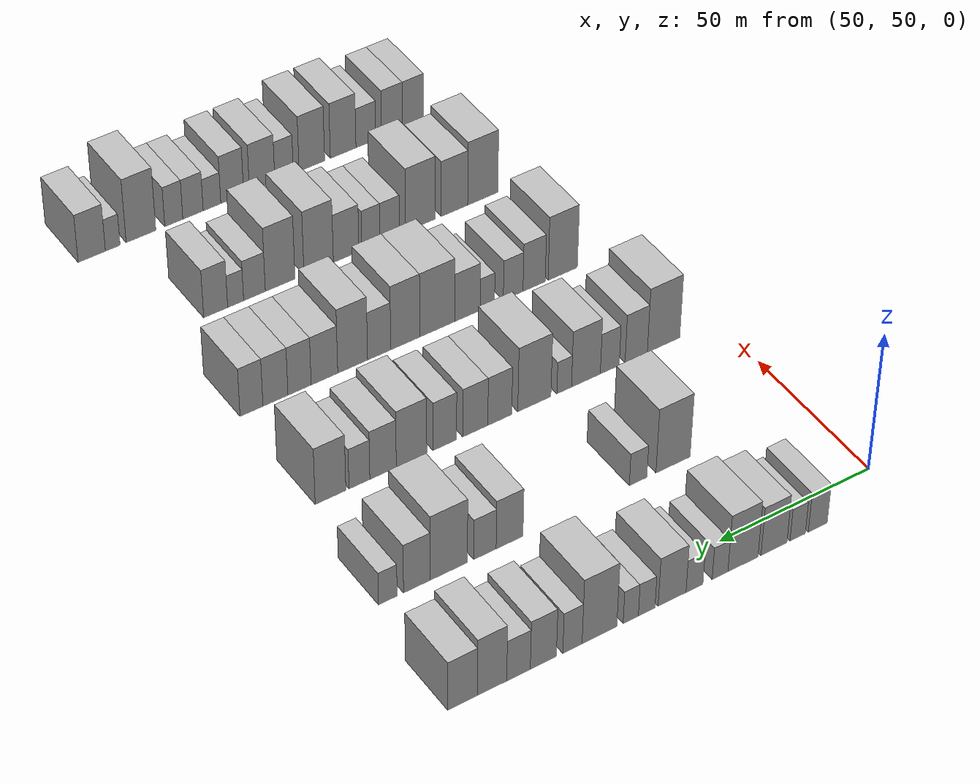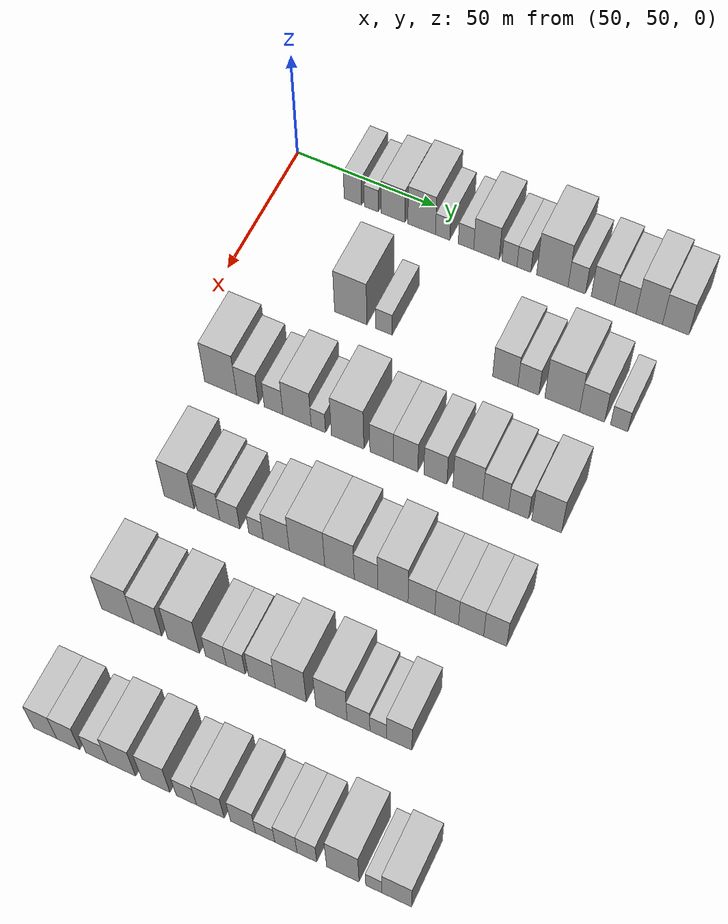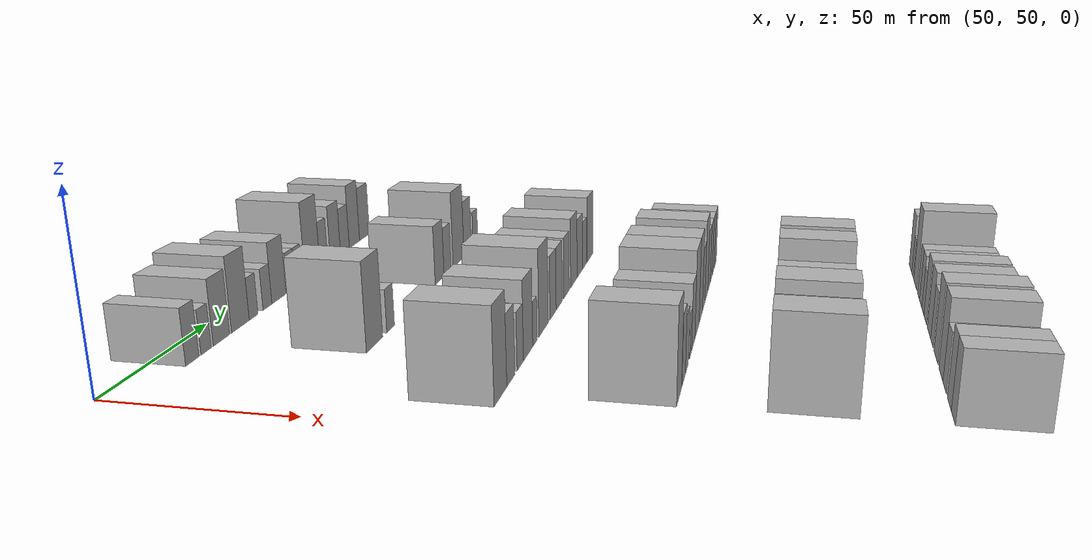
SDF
<sdf version="1.6">
 <world name="default">
  <model name="building_76">
   <static>1</static>
   <pose>50.0000 75.0521 0 0.000000 0.000000 0.000000</pose>
   <link name="link">
    <pose>0 0 7.50 0 0 0</pose>
    <collision name="collision"><geometry><box><size>20.0000 6.3137 15.0000</size></box></geometry></collision>
    <visual name="visual">
     <cast_shadows>0</cast_shadows>
     <geometry><box><size>20.0000 6.3137 15.0000</size></box></geometry>
     <material>
      <script>
       <uri>model://HANNAS_wall/materials/scripts</uri>
       <uri>model://HANNAS_wall/materials/textures</uri>
       <name>vrc/HANNAS_wall</name>
      </script>
     </material>
    </visual>
   </link>
  </model>
  <model name="building_77">
   <static>1</static>
   <pose>50.0000 81.7573 0 0.000000 0.000000 0.000000</pose>
   <link name="link">
    <pose>0 0 6.00 0 0 0</pose>
    <collision name="collision"><geometry><box><size>20.0000 5.0967 12.0000</size></box></geometry></collision>
    <visual name="visual">
     <cast_shadows>0</cast_shadows>
     <geometry><box><size>20.0000 5.0967 12.0000</size></box></geometry>
     <material>
      <script>
       <uri>model://HANNAS_wall/materials/scripts</uri>
       <uri>model://HANNAS_wall/materials/textures</uri>
       <name>vrc/HANNAS_wall</name>
      </script>
     </material>
    </visual>
   </link>
  </model>
  <model name="building_78">
   <static>1</static>
   <pose>50.0000 89.5928 0 0.000000 0.000000 0.000000</pose>
   <link name="link">
    <pose>0 0 9.00 0 0 0</pose>
    <collision name="collision"><geometry><box><size>20.0000 8.5744 18.0000</size></box></geometry></collision>
    <visual name="visual">
     <cast_shadows>0</cast_shadows>
     <geometry><box><size>20.0000 8.5744 18.0000</size></box></geometry>
     <material>
      <script>
       <uri>model://HANNAS_wall/materials/scripts</uri>
       <uri>model://HANNAS_wall/materials/textures</uri>
       <name>vrc/HANNAS_wall</name>
      </script>
     </material>
    </visual>
   </link>
  </model>
  <model name="building_79">
   <static>1</static>
   <pose>50.0000 99.8030 0 0.000000 0.000000 0.000000</pose>
   <link name="link">
    <pose>0 0 10.50 0 0 0</pose>
    <collision name="collision"><geometry><box><size>20.0000 9.8460 21.0000</size></box></geometry></collision>
    <visual name="visual">
     <cast_shadows>0</cast_shadows>
     <geometry><box><size>20.0000 9.8460 21.0000</size></box></geometry>
     <material>
      <script>
       <uri>model://HANNAS_wall/materials/scripts</uri>
       <uri>model://HANNAS_wall/materials/textures</uri>
       <name>vrc/HANNAS_wall</name>
      </script>
     </material>
    </visual>
   </link>
  </model>
  <model name="building_80">
   <static>1</static>
   <pose>50.0000 107.2828 0 0.000000 0.000000 0.000000</pose>
   <link name="link">
    <pose>0 0 6.00 0 0 0</pose>
    <collision name="collision"><geometry><box><size>20.0000 5.1136 12.0000</size></box></geometry></collision>
    <visual name="visual">
     <cast_shadows>0</cast_shadows>
     <geometry><box><size>20.0000 5.1136 12.0000</size></box></geometry>
     <material>
      <script>
       <uri>model://HANNAS_wall/materials/scripts</uri>
       <uri>model://HANNAS_wall/materials/textures</uri>
       <name>vrc/HANNAS_wall</name>
      </script>
     </material>
    </visual>
   </link>
  </model>
  <model name="building_81">
   <static>1</static>
   <pose>50.0000 115.5701 0 0.000000 0.000000 0.000000</pose>
   <link name="link">
    <pose>0 0 6.00 0 0 0</pose>
    <collision name="collision"><geometry><box><size>20.0000 5.4610 12.0000</size></box></geometry></collision>
    <visual name="visual">
     <cast_shadows>0</cast_shadows>
     <geometry><box><size>20.0000 5.4610 12.0000</size></box></geometry>
     <material>
      <script>
       <uri>model://HANNAS_wall/materials/scripts</uri>
       <uri>model://HANNAS_wall/materials/textures</uri>
       <name>vrc/HANNAS_wall</name>
      </script>
     </material>
    </visual>
   </link>
  </model>
  <model name="building_82">
   <static>1</static>
   <pose>50.0000 122.7783 0 0.000000 0.000000 0.000000</pose>
   <link name="link">
    <pose>0 0 9.00 0 0 0</pose>
    <collision name="collision"><geometry><box><size>20.0000 8.9554 18.0000</size></box></geometry></collision>
    <visual name="visual">
     <cast_shadows>0</cast_shadows>
     <geometry><box><size>20.0000 8.9554 18.0000</size></box></geometry>
     <material>
      <script>
       <uri>model://HANNAS_wall/materials/scripts</uri>
       <uri>model://HANNAS_wall/materials/textures</uri>
       <name>vrc/HANNAS_wall</name>
      </script>
     </material>
    </visual>
   </link>
  </model>
  <model name="building_83">
   <static>1</static>
   <pose>50.0000 130.8940 0 0.000000 0.000000 0.000000</pose>
   <link name="link">
    <pose>0 0 6.00 0 0 0</pose>
    <collision name="collision"><geometry><box><size>20.0000 5.2760 12.0000</size></box></geometry></collision>
    <visual name="visual">
     <cast_shadows>0</cast_shadows>
     <geometry><box><size>20.0000 5.2760 12.0000</size></box></geometry>
     <material>
      <script>
       <uri>model://HANNAS_wall/materials/scripts</uri>
       <uri>model://HANNAS_wall/materials/textures</uri>
       <name>vrc/HANNAS_wall</name>
      </script>
     </material>
    </visual>
   </link>
  </model>
  <model name="building_84">
   <static>1</static>
   <pose>50.0000 135.9546 0 0.000000 0.000000 0.000000</pose>
   <link name="link">
    <pose>0 0 6.00 0 0 0</pose>
    <collision name="collision"><geometry><box><size>20.0000 4.8452 12.0000</size></box></geometry></collision>
    <visual name="visual">
     <cast_shadows>0</cast_shadows>
     <geometry><box><size>20.0000 4.8452 12.0000</size></box></geometry>
     <material>
      <script>
       <uri>model://HANNAS_wall/materials/scripts</uri>
       <uri>model://HANNAS_wall/materials/textures</uri>
       <name>vrc/HANNAS_wall</name>
      </script>
     </material>
    </visual>
   </link>
  </model>
  <model name="building_85">
   <static>1</static>
   <pose>50.0000 145.8380 0 0.000000 0.000000 0.000000</pose>
   <link name="link">
    <pose>0 0 12.00 0 0 0</pose>
    <collision name="collision"><geometry><box><size>20.0000 10.9216 24.0000</size></box></geometry></collision>
    <visual name="visual">
     <cast_shadows>0</cast_shadows>
     <geometry><box><size>20.0000 10.9216 24.0000</size></box></geometry>
     <material>
      <script>
       <uri>model://HANNAS_wall/materials/scripts</uri>
       <uri>model://HANNAS_wall/materials/textures</uri>
       <name>vrc/HANNAS_wall</name>
      </script>
     </material>
    </visual>
   </link>
  </model>
  <model name="building_86">
   <static>1</static>
   <pose>50.0000 154.3077 0 0.000000 0.000000 0.000000</pose>
   <link name="link">
    <pose>0 0 7.50 0 0 0</pose>
    <collision name="collision"><geometry><box><size>20.0000 6.0177 15.0000</size></box></geometry></collision>
    <visual name="visual">
     <cast_shadows>0</cast_shadows>
     <geometry><box><size>20.0000 6.0177 15.0000</size></box></geometry>
     <material>
      <script>
       <uri>model://HANNAS_wall/materials/scripts</uri>
       <uri>model://HANNAS_wall/materials/textures</uri>
       <name>vrc/HANNAS_wall</name>
      </script>
     </material>
    </visual>
   </link>
  </model>
  <model name="building_87">
   <static>1</static>
   <pose>50.0000 163.3522 0 0.000000 0.000000 0.000000</pose>
   <link name="link">
    <pose>0 0 9.00 0 0 0</pose>
    <collision name="collision"><geometry><box><size>20.0000 8.0713 18.0000</size></box></geometry></collision>
    <visual name="visual">
     <cast_shadows>0</cast_shadows>
     <geometry><box><size>20.0000 8.0713 18.0000</size></box></geometry>
     <material>
      <script>
       <uri>model://HANNAS_wall/materials/scripts</uri>
       <uri>model://HANNAS_wall/materials/textures</uri>
       <name>vrc/HANNAS_wall</name>
      </script>
     </material>
    </visual>
   </link>
  </model>
  <model name="building_88">
   <static>1</static>
   <pose>50.0000 171.0215 0 0.000000 0.000000 0.000000</pose>
   <link name="link">
    <pose>0 0 7.50 0 0 0</pose>
    <collision name="collision"><geometry><box><size>20.0000 7.2672 15.0000</size></box></geometry></collision>
    <visual name="visual">
     <cast_shadows>0</cast_shadows>
     <geometry><box><size>20.0000 7.2672 15.0000</size></box></geometry>
     <material>
      <script>
       <uri>model://HANNAS_wall/materials/scripts</uri>
       <uri>model://HANNAS_wall/materials/textures</uri>
       <name>vrc/HANNAS_wall</name>
      </script>
     </material>
    </visual>
   </link>
  </model>
  <model name="building_89">
   <static>1</static>
   <pose>50.0000 179.1324 0 0.000000 0.000000 0.000000</pose>
   <link name="link">
    <pose>0 0 10.50 0 0 0</pose>
    <collision name="collision"><geometry><box><size>20.0000 8.9546 21.0000</size></box></geometry></collision>
    <visual name="visual">
     <cast_shadows>0</cast_shadows>
     <geometry><box><size>20.0000 8.9546 21.0000</size></box></geometry>
     <material>
      <script>
       <uri>model://HANNAS_wall/materials/scripts</uri>
       <uri>model://HANNAS_wall/materials/textures</uri>
       <name>vrc/HANNAS_wall</name>
      </script>
     </material>
    </visual>
   </link>
  </model>
  <model name="building_90">
   <static>1</static>
   <pose>50.0000 188.1032 0 0.000000 0.000000 0.000000</pose>
   <link name="link">
    <pose>0 0 9.00 0 0 0</pose>
    <collision name="collision"><geometry><box><size>20.0000 8.9871 18.0000</size></box></geometry></collision>
    <visual name="visual">
     <cast_shadows>0</cast_shadows>
     <geometry><box><size>20.0000 8.9871 18.0000</size></box></geometry>
     <material>
      <script>
       <uri>model://HANNAS_wall/materials/scripts</uri>
       <uri>model://HANNAS_wall/materials/textures</uri>
       <name>vrc/HANNAS_wall</name>
      </script>
     </material>
    </visual>
   </link>
  </model>
  <model name="building_205">
   <static>1</static>
   <pose>90.0000 93.7532 0 0.000000 0.000000 0.000000</pose>
   <link name="link">
    <pose>0 0 12.00 0 0 0</pose>
    <collision name="collision"><geometry><box><size>20.0000 11.3668 24.0000</size></box></geometry></collision>
    <visual name="visual">
     <cast_shadows>0</cast_shadows>
     <geometry><box><size>20.0000 11.3668 24.0000</size></box></geometry>
     <material>
      <script>
       <uri>model://HANNAS_wall/materials/scripts</uri>
       <uri>model://HANNAS_wall/materials/textures</uri>
       <name>vrc/HANNAS_wall</name>
      </script>
     </material>
    </visual>
   </link>
  </model>
  <model name="building_206">
   <static>1</static>
   <pose>90.0000 105.3452 0 0.000000 0.000000 0.000000</pose>
   <link name="link">
    <pose>0 0 6.00 0 0 0</pose>
    <collision name="collision"><geometry><box><size>20.0000 5.8174 12.0000</size></box></geometry></collision>
    <visual name="visual">
     <cast_shadows>0</cast_shadows>
     <geometry><box><size>20.0000 5.8174 12.0000</size></box></geometry>
     <material>
      <script>
       <uri>model://HANNAS_wall/materials/scripts</uri>
       <uri>model://HANNAS_wall/materials/textures</uri>
       <name>vrc/HANNAS_wall</name>
      </script>
     </material>
    </visual>
   </link>
  </model>
  <model name="building_207">
   <static>1</static>
   <pose>90.0000 147.0761 0 0.000000 0.000000 0.000000</pose>
   <link name="link">
    <pose>0 0 9.00 0 0 0</pose>
    <collision name="collision"><geometry><box><size>20.0000 8.5481 18.0000</size></box></geometry></collision>
    <visual name="visual">
     <cast_shadows>0</cast_shadows>
     <geometry><box><size>20.0000 8.5481 18.0000</size></box></geometry>
     <material>
      <script>
       <uri>model://HANNAS_wall/materials/scripts</uri>
       <uri>model://HANNAS_wall/materials/textures</uri>
       <name>vrc/HANNAS_wall</name>
      </script>
     </material>
    </visual>
   </link>
  </model>
  <model name="building_208">
   <static>1</static>
   <pose>90.0000 154.8977 0 0.000000 0.000000 0.000000</pose>
   <link name="link">
    <pose>0 0 7.50 0 0 0</pose>
    <collision name="collision"><geometry><box><size>20.0000 7.0952 15.0000</size></box></geometry></collision>
    <visual name="visual">
     <cast_shadows>0</cast_shadows>
     <geometry><box><size>20.0000 7.0952 15.0000</size></box></geometry>
     <material>
      <script>
       <uri>model://HANNAS_wall/materials/scripts</uri>
       <uri>model://HANNAS_wall/materials/textures</uri>
       <name>vrc/HANNAS_wall</name>
      </script>
     </material>
    </visual>
   </link>
  </model>
  <model name="building_209">
   <static>1</static>
   <pose>90.0000 166.2801 0 0.000000 0.000000 0.000000</pose>
   <link name="link">
    <pose>0 0 12.00 0 0 0</pose>
    <collision name="collision"><geometry><box><size>20.0000 11.6695 24.0000</size></box></geometry></collision>
    <visual name="visual">
     <cast_shadows>0</cast_shadows>
     <geometry><box><size>20.0000 11.6695 24.0000</size></box></geometry>
     <material>
      <script>
       <uri>model://HANNAS_wall/materials/scripts</uri>
       <uri>model://HANNAS_wall/materials/textures</uri>
       <name>vrc/HANNAS_wall</name>
      </script>
     </material>
    </visual>
   </link>
  </model>
  <model name="building_210">
   <static>1</static>
   <pose>90.0000 176.2629 0 0.000000 0.000000 0.000000</pose>
   <link name="link">
    <pose>0 0 9.00 0 0 0</pose>
    <collision name="collision"><geometry><box><size>20.0000 8.2962 18.0000</size></box></geometry></collision>
    <visual name="visual">
     <cast_shadows>0</cast_shadows>
     <geometry><box><size>20.0000 8.2962 18.0000</size></box></geometry>
     <material>
      <script>
       <uri>model://HANNAS_wall/materials/scripts</uri>
       <uri>model://HANNAS_wall/materials/textures</uri>
       <name>vrc/HANNAS_wall</name>
      </script>
     </material>
    </visual>
   </link>
  </model>
  <model name="building_211">
   <static>1</static>
   <pose>90.0000 185.2749 0 0.000000 0.000000 0.000000</pose>
   <link name="link">
    <pose>0 0 6.00 0 0 0</pose>
    <collision name="collision"><geometry><box><size>20.0000 5.7279 12.0000</size></box></geometry></collision>
    <visual name="visual">
     <cast_shadows>0</cast_shadows>
     <geometry><box><size>20.0000 5.7279 12.0000</size></box></geometry>
     <material>
      <script>
       <uri>model://HANNAS_wall/materials/scripts</uri>
       <uri>model://HANNAS_wall/materials/textures</uri>
       <name>vrc/HANNAS_wall</name>
      </script>
     </material>
    </visual>
   </link>
  </model>
  <model name="building_343">
   <static>1</static>
   <pose>130.0000 68.3264 0 0.000000 0.000000 0.000000</pose>
   <link name="link">
    <pose>0 0 12.00 0 0 0</pose>
    <collision name="collision"><geometry><box><size>20.0000 11.1524 24.0000</size></box></geometry></collision>
    <visual name="visual">
     <cast_shadows>0</cast_shadows>
     <geometry><box><size>20.0000 11.1524 24.0000</size></box></geometry>
     <material>
      <script>
       <uri>model://HANNAS_wall/materials/scripts</uri>
       <uri>model://HANNAS_wall/materials/textures</uri>
       <name>vrc/HANNAS_wall</name>
      </script>
     </material>
    </visual>
   </link>
  </model>
  <model name="building_344">
   <static>1</static>
   <pose>130.0000 77.7232 0 0.000000 0.000000 0.000000</pose>
   <link name="link">
    <pose>0 0 9.00 0 0 0</pose>
    <collision name="collision"><geometry><box><size>20.0000 7.6411 18.0000</size></box></geometry></collision>
    <visual name="visual">
     <cast_shadows>0</cast_shadows>
     <geometry><box><size>20.0000 7.6411 18.0000</size></box></geometry>
     <material>
      <script>
       <uri>model://HANNAS_wall/materials/scripts</uri>
       <uri>model://HANNAS_wall/materials/textures</uri>
       <name>vrc/HANNAS_wall</name>
      </script>
     </material>
    </visual>
   </link>
  </model>
  <model name="building_345">
   <static>1</static>
   <pose>130.0000 86.7594 0 0.000000 0.000000 0.000000</pose>
   <link name="link">
    <pose>0 0 7.50 0 0 0</pose>
    <collision name="collision"><geometry><box><size>20.0000 6.4314 15.0000</size></box></geometry></collision>
    <visual name="visual">
     <cast_shadows>0</cast_shadows>
     <geometry><box><size>20.0000 6.4314 15.0000</size></box></geometry>
     <material>
      <script>
       <uri>model://HANNAS_wall/materials/scripts</uri>
       <uri>model://HANNAS_wall/materials/textures</uri>
       <name>vrc/HANNAS_wall</name>
      </script>
     </material>
    </visual>
   </link>
  </model>
  <model name="building_346">
   <static>1</static>
   <pose>130.0000 94.8477 0 0.000000 0.000000 0.000000</pose>
   <link name="link">
    <pose>0 0 10.50 0 0 0</pose>
    <collision name="collision"><geometry><box><size>20.0000 9.7452 21.0000</size></box></geometry></collision>
    <visual name="visual">
     <cast_shadows>0</cast_shadows>
     <geometry><box><size>20.0000 9.7452 21.0000</size></box></geometry>
     <material>
      <script>
       <uri>model://HANNAS_wall/materials/scripts</uri>
       <uri>model://HANNAS_wall/materials/textures</uri>
       <name>vrc/HANNAS_wall</name>
      </script>
     </material>
    </visual>
   </link>
  </model>
  <model name="building_347">
   <static>1</static>
   <pose>130.0000 102.1739 0 0.000000 0.000000 0.000000</pose>
   <link name="link">
    <pose>0 0 6.00 0 0 0</pose>
    <collision name="collision"><geometry><box><size>20.0000 4.9071 12.0000</size></box></geometry></collision>
    <visual name="visual">
     <cast_shadows>0</cast_shadows>
     <geometry><box><size>20.0000 4.9071 12.0000</size></box></geometry>
     <material>
      <script>
       <uri>model://HANNAS_wall/materials/scripts</uri>
       <uri>model://HANNAS_wall/materials/textures</uri>
       <name>vrc/HANNAS_wall</name>
      </script>
     </material>
    </visual>
   </link>
  </model>
  <model name="building_348">
   <static>1</static>
   <pose>130.0000 112.1470 0 0.000000 0.000000 0.000000</pose>
   <link name="link">
    <pose>0 0 12.00 0 0 0</pose>
    <collision name="collision"><geometry><box><size>20.0000 11.0391 24.0000</size></box></geometry></collision>
    <visual name="visual">
     <cast_shadows>0</cast_shadows>
     <geometry><box><size>20.0000 11.0391 24.0000</size></box></geometry>
     <material>
      <script>
       <uri>model://HANNAS_wall/materials/scripts</uri>
       <uri>model://HANNAS_wall/materials/textures</uri>
       <name>vrc/HANNAS_wall</name>
      </script>
     </material>
    </visual>
   </link>
  </model>
  <model name="building_349">
   <static>1</static>
   <pose>130.0000 123.6184 0 0.000000 0.000000 0.000000</pose>
   <link name="link">
    <pose>0 0 9.00 0 0 0</pose>
    <collision name="collision"><geometry><box><size>20.0000 7.9037 18.0000</size></box></geometry></collision>
    <visual name="visual">
     <cast_shadows>0</cast_shadows>
     <geometry><box><size>20.0000 7.9037 18.0000</size></box></geometry>
     <material>
      <script>
       <uri>model://HANNAS_wall/materials/scripts</uri>
       <uri>model://HANNAS_wall/materials/textures</uri>
       <name>vrc/HANNAS_wall</name>
      </script>
     </material>
    </visual>
   </link>
  </model>
  <model name="building_350">
   <static>1</static>
   <pose>130.0000 131.6842 0 0.000000 0.000000 0.000000</pose>
   <link name="link">
    <pose>0 0 9.00 0 0 0</pose>
    <collision name="collision"><geometry><box><size>20.0000 8.2281 18.0000</size></box></geometry></collision>
    <visual name="visual">
     <cast_shadows>0</cast_shadows>
     <geometry><box><size>20.0000 8.2281 18.0000</size></box></geometry>
     <material>
      <script>
       <uri>model://HANNAS_wall/materials/scripts</uri>
       <uri>model://HANNAS_wall/materials/textures</uri>
       <name>vrc/HANNAS_wall</name>
      </script>
     </material>
    </visual>
   </link>
  </model>
  <model name="building_351">
   <static>1</static>
   <pose>130.0000 141.6353 0 0.000000 0.000000 0.000000</pose>
   <link name="link">
    <pose>0 0 9.00 0 0 0</pose>
    <collision name="collision"><geometry><box><size>20.0000 7.6742 18.0000</size></box></geometry></collision>
    <visual name="visual">
     <cast_shadows>0</cast_shadows>
     <geometry><box><size>20.0000 7.6742 18.0000</size></box></geometry>
     <material>
      <script>
       <uri>model://HANNAS_wall/materials/scripts</uri>
       <uri>model://HANNAS_wall/materials/textures</uri>
       <name>vrc/HANNAS_wall</name>
      </script>
     </material>
    </visual>
   </link>
  </model>
  <model name="building_352">
   <static>1</static>
   <pose>130.0000 152.3917 0 0.000000 0.000000 0.000000</pose>
   <link name="link">
    <pose>0 0 10.50 0 0 0</pose>
    <collision name="collision"><geometry><box><size>20.0000 9.8386 21.0000</size></box></geometry></collision>
    <visual name="visual">
     <cast_shadows>0</cast_shadows>
     <geometry><box><size>20.0000 9.8386 21.0000</size></box></geometry>
     <material>
      <script>
       <uri>model://HANNAS_wall/materials/scripts</uri>
       <uri>model://HANNAS_wall/materials/textures</uri>
       <name>vrc/HANNAS_wall</name>
      </script>
     </material>
    </visual>
   </link>
  </model>
  <model name="building_353">
   <static>1</static>
   <pose>130.0000 161.5346 0 0.000000 0.000000 0.000000</pose>
   <link name="link">
    <pose>0 0 9.00 0 0 0</pose>
    <collision name="collision"><geometry><box><size>20.0000 8.4470 18.0000</size></box></geometry></collision>
    <visual name="visual">
     <cast_shadows>0</cast_shadows>
     <geometry><box><size>20.0000 8.4470 18.0000</size></box></geometry>
     <material>
      <script>
       <uri>model://HANNAS_wall/materials/scripts</uri>
       <uri>model://HANNAS_wall/materials/textures</uri>
       <name>vrc/HANNAS_wall</name>
      </script>
     </material>
    </visual>
   </link>
  </model>
  <model name="building_354">
   <static>1</static>
   <pose>130.0000 169.0689 0 0.000000 0.000000 0.000000</pose>
   <link name="link">
    <pose>0 0 7.50 0 0 0</pose>
    <collision name="collision"><geometry><box><size>20.0000 6.6216 15.0000</size></box></geometry></collision>
    <visual name="visual">
     <cast_shadows>0</cast_shadows>
     <geometry><box><size>20.0000 6.6216 15.0000</size></box></geometry>
     <material>
      <script>
       <uri>model://HANNAS_wall/materials/scripts</uri>
       <uri>model://HANNAS_wall/materials/textures</uri>
       <name>vrc/HANNAS_wall</name>
      </script>
     </material>
    </visual>
   </link>
  </model>
  <model name="building_355">
   <static>1</static>
   <pose>130.0000 178.2189 0 0.000000 0.000000 0.000000</pose>
   <link name="link">
    <pose>0 0 10.50 0 0 0</pose>
    <collision name="collision"><geometry><box><size>20.0000 9.6783 21.0000</size></box></geometry></collision>
    <visual name="visual">
     <cast_shadows>0</cast_shadows>
     <geometry><box><size>20.0000 9.6783 21.0000</size></box></geometry>
     <material>
      <script>
       <uri>model://HANNAS_wall/materials/scripts</uri>
       <uri>model://HANNAS_wall/materials/textures</uri>
       <name>vrc/HANNAS_wall</name>
      </script>
     </material>
    </visual>
   </link>
  </model>
  <model name="building_475">
   <static>1</static>
   <pose>170.0000 75.3332 0 0.000000 0.000000 0.000000</pose>
   <link name="link">
    <pose>0 0 12.00 0 0 0</pose>
    <collision name="collision"><geometry><box><size>20.0000 10.1677 24.0000</size></box></geometry></collision>
    <visual name="visual">
     <cast_shadows>0</cast_shadows>
     <geometry><box><size>20.0000 10.1677 24.0000</size></box></geometry>
     <material>
      <script>
       <uri>model://HANNAS_wall/materials/scripts</uri>
       <uri>model://HANNAS_wall/materials/textures</uri>
       <name>vrc/HANNAS_wall</name>
      </script>
     </material>
    </visual>
   </link>
  </model>
  <model name="building_476">
   <static>1</static>
   <pose>170.0000 85.2514 0 0.000000 0.000000 0.000000</pose>
   <link name="link">
    <pose>0 0 9.00 0 0 0</pose>
    <collision name="collision"><geometry><box><size>20.0000 7.6686 18.0000</size></box></geometry></collision>
    <visual name="visual">
     <cast_shadows>0</cast_shadows>
     <geometry><box><size>20.0000 7.6686 18.0000</size></box></geometry>
     <material>
      <script>
       <uri>model://HANNAS_wall/materials/scripts</uri>
       <uri>model://HANNAS_wall/materials/textures</uri>
       <name>vrc/HANNAS_wall</name>
      </script>
     </material>
    </visual>
   </link>
  </model>
  <model name="building_477">
   <static>1</static>
   <pose>170.0000 92.4653 0 0.000000 0.000000 0.000000</pose>
   <link name="link">
    <pose>0 0 7.50 0 0 0</pose>
    <collision name="collision"><geometry><box><size>20.0000 6.7593 15.0000</size></box></geometry></collision>
    <visual name="visual">
     <cast_shadows>0</cast_shadows>
     <geometry><box><size>20.0000 6.7593 15.0000</size></box></geometry>
     <material>
      <script>
       <uri>model://HANNAS_wall/materials/scripts</uri>
       <uri>model://HANNAS_wall/materials/textures</uri>
       <name>vrc/HANNAS_wall</name>
      </script>
     </material>
    </visual>
   </link>
  </model>
  <model name="building_478">
   <static>1</static>
   <pose>170.0000 101.2752 0 0.000000 0.000000 0.000000</pose>
   <link name="link">
    <pose>0 0 6.00 0 0 0</pose>
    <collision name="collision"><geometry><box><size>20.0000 4.8605 12.0000</size></box></geometry></collision>
    <visual name="visual">
     <cast_shadows>0</cast_shadows>
     <geometry><box><size>20.0000 4.8605 12.0000</size></box></geometry>
     <material>
      <script>
       <uri>model://HANNAS_wall/materials/scripts</uri>
       <uri>model://HANNAS_wall/materials/textures</uri>
       <name>vrc/HANNAS_wall</name>
      </script>
     </material>
    </visual>
   </link>
  </model>
  <model name="building_479">
   <static>1</static>
   <pose>170.0000 108.0428 0 0.000000 0.000000 0.000000</pose>
   <link name="link">
    <pose>0 0 9.00 0 0 0</pose>
    <collision name="collision"><geometry><box><size>20.0000 8.6748 18.0000</size></box></geometry></collision>
    <visual name="visual">
     <cast_shadows>0</cast_shadows>
     <geometry><box><size>20.0000 8.6748 18.0000</size></box></geometry>
     <material>
      <script>
       <uri>model://HANNAS_wall/materials/scripts</uri>
       <uri>model://HANNAS_wall/materials/textures</uri>
       <name>vrc/HANNAS_wall</name>
      </script>
     </material>
    </visual>
   </link>
  </model>
  <model name="building_480">
   <static>1</static>
   <pose>170.0000 118.2469 0 0.000000 0.000000 0.000000</pose>
   <link name="link">
    <pose>0 0 12.00 0 0 0</pose>
    <collision name="collision"><geometry><box><size>20.0000 11.7334 24.0000</size></box></geometry></collision>
    <visual name="visual">
     <cast_shadows>0</cast_shadows>
     <geometry><box><size>20.0000 11.7334 24.0000</size></box></geometry>
     <material>
      <script>
       <uri>model://HANNAS_wall/materials/scripts</uri>
       <uri>model://HANNAS_wall/materials/textures</uri>
       <name>vrc/HANNAS_wall</name>
      </script>
     </material>
    </visual>
   </link>
  </model>
  <model name="building_481">
   <static>1</static>
   <pose>170.0000 128.9562 0 0.000000 0.000000 0.000000</pose>
   <link name="link">
    <pose>0 0 12.00 0 0 0</pose>
    <collision name="collision"><geometry><box><size>20.0000 9.6851 24.0000</size></box></geometry></collision>
    <visual name="visual">
     <cast_shadows>0</cast_shadows>
     <geometry><box><size>20.0000 9.6851 24.0000</size></box></geometry>
     <material>
      <script>
       <uri>model://HANNAS_wall/materials/scripts</uri>
       <uri>model://HANNAS_wall/materials/textures</uri>
       <name>vrc/HANNAS_wall</name>
      </script>
     </material>
    </visual>
   </link>
  </model>
  <model name="building_482">
   <static>1</static>
   <pose>170.0000 137.6355 0 0.000000 0.000000 0.000000</pose>
   <link name="link">
    <pose>0 0 9.00 0 0 0</pose>
    <collision name="collision"><geometry><box><size>20.0000 7.6735 18.0000</size></box></geometry></collision>
    <visual name="visual">
     <cast_shadows>0</cast_shadows>
     <geometry><box><size>20.0000 7.6735 18.0000</size></box></geometry>
     <material>
      <script>
       <uri>model://HANNAS_wall/materials/scripts</uri>
       <uri>model://HANNAS_wall/materials/textures</uri>
       <name>vrc/HANNAS_wall</name>
      </script>
     </material>
    </visual>
   </link>
  </model>
  <model name="building_483">
   <static>1</static>
   <pose>170.0000 146.3777 0 0.000000 0.000000 0.000000</pose>
   <link name="link">
    <pose>0 0 12.00 0 0 0</pose>
    <collision name="collision"><geometry><box><size>20.0000 9.8110 24.0000</size></box></geometry></collision>
    <visual name="visual">
     <cast_shadows>0</cast_shadows>
     <geometry><box><size>20.0000 9.8110 24.0000</size></box></geometry>
     <material>
      <script>
       <uri>model://HANNAS_wall/materials/scripts</uri>
       <uri>model://HANNAS_wall/materials/textures</uri>
       <name>vrc/HANNAS_wall</name>
      </script>
     </material>
    </visual>
   </link>
  </model>
  <model name="building_484">
   <static>1</static>
   <pose>170.0000 155.6214 0 0.000000 0.000000 0.000000</pose>
   <link name="link">
    <pose>0 0 9.00 0 0 0</pose>
    <collision name="collision"><geometry><box><size>20.0000 8.6762 18.0000</size></box></geometry></collision>
    <visual name="visual">
     <cast_shadows>0</cast_shadows>
     <geometry><box><size>20.0000 8.6762 18.0000</size></box></geometry>
     <material>
      <script>
       <uri>model://HANNAS_wall/materials/scripts</uri>
       <uri>model://HANNAS_wall/materials/textures</uri>
       <name>vrc/HANNAS_wall</name>
      </script>
     </material>
    </visual>
   </link>
  </model>
  <model name="building_485">
   <static>1</static>
   <pose>170.0000 163.7247 0 0.000000 0.000000 0.000000</pose>
   <link name="link">
    <pose>0 0 9.00 0 0 0</pose>
    <collision name="collision"><geometry><box><size>20.0000 7.5304 18.0000</size></box></geometry></collision>
    <visual name="visual">
     <cast_shadows>0</cast_shadows>
     <geometry><box><size>20.0000 7.5304 18.0000</size></box></geometry>
     <material>
      <script>
       <uri>model://HANNAS_wall/materials/scripts</uri>
       <uri>model://HANNAS_wall/materials/textures</uri>
       <name>vrc/HANNAS_wall</name>
      </script>
     </material>
    </visual>
   </link>
  </model>
  <model name="building_486">
   <static>1</static>
   <pose>170.0000 171.5163 0 0.000000 0.000000 0.000000</pose>
   <link name="link">
    <pose>0 0 9.00 0 0 0</pose>
    <collision name="collision"><geometry><box><size>20.0000 8.0529 18.0000</size></box></geometry></collision>
    <visual name="visual">
     <cast_shadows>0</cast_shadows>
     <geometry><box><size>20.0000 8.0529 18.0000</size></box></geometry>
     <material>
      <script>
       <uri>model://HANNAS_wall/materials/scripts</uri>
       <uri>model://HANNAS_wall/materials/textures</uri>
       <name>vrc/HANNAS_wall</name>
      </script>
     </material>
    </visual>
   </link>
  </model>
  <model name="building_487">
   <static>1</static>
   <pose>170.0000 179.2100 0 0.000000 0.000000 0.000000</pose>
   <link name="link">
    <pose>0 0 9.00 0 0 0</pose>
    <collision name="collision"><geometry><box><size>20.0000 7.3344 18.0000</size></box></geometry></collision>
    <visual name="visual">
     <cast_shadows>0</cast_shadows>
     <geometry><box><size>20.0000 7.3344 18.0000</size></box></geometry>
     <material>
      <script>
       <uri>model://HANNAS_wall/materials/scripts</uri>
       <uri>model://HANNAS_wall/materials/textures</uri>
       <name>vrc/HANNAS_wall</name>
      </script>
     </material>
    </visual>
   </link>
  </model>
  <model name="building_608">
   <static>1</static>
   <pose>210.0000 76.4929 0 0.000000 0.000000 0.000000</pose>
   <link name="link">
    <pose>0 0 12.00 0 0 0</pose>
    <collision name="collision"><geometry><box><size>20.0000 10.6195 24.0000</size></box></geometry></collision>
    <visual name="visual">
     <cast_shadows>0</cast_shadows>
     <geometry><box><size>20.0000 10.6195 24.0000</size></box></geometry>
     <material>
      <script>
       <uri>model://HANNAS_wall/materials/scripts</uri>
       <uri>model://HANNAS_wall/materials/textures</uri>
       <name>vrc/HANNAS_wall</name>
      </script>
     </material>
    </visual>
   </link>
  </model>
  <model name="building_609">
   <static>1</static>
   <pose>210.0000 86.4452 0 0.000000 0.000000 0.000000</pose>
   <link name="link">
    <pose>0 0 10.50 0 0 0</pose>
    <collision name="collision"><geometry><box><size>20.0000 9.2851 21.0000</size></box></geometry></collision>
    <visual name="visual">
     <cast_shadows>0</cast_shadows>
     <geometry><box><size>20.0000 9.2851 21.0000</size></box></geometry>
     <material>
      <script>
       <uri>model://HANNAS_wall/materials/scripts</uri>
       <uri>model://HANNAS_wall/materials/textures</uri>
       <name>vrc/HANNAS_wall</name>
      </script>
     </material>
    </visual>
   </link>
  </model>
  <model name="building_610">
   <static>1</static>
   <pose>210.0000 98.2793 0 0.000000 0.000000 0.000000</pose>
   <link name="link">
    <pose>0 0 12.00 0 0 0</pose>
    <collision name="collision"><geometry><box><size>20.0000 10.3831 24.0000</size></box></geometry></collision>
    <visual name="visual">
     <cast_shadows>0</cast_shadows>
     <geometry><box><size>20.0000 10.3831 24.0000</size></box></geometry>
     <material>
      <script>
       <uri>model://HANNAS_wall/materials/scripts</uri>
       <uri>model://HANNAS_wall/materials/textures</uri>
       <name>vrc/HANNAS_wall</name>
      </script>
     </material>
    </visual>
   </link>
  </model>
  <model name="building_611">
   <static>1</static>
   <pose>210.0000 108.8446 0 0.000000 0.000000 0.000000</pose>
   <link name="link">
    <pose>0 0 7.50 0 0 0</pose>
    <collision name="collision"><geometry><box><size>20.0000 6.7474 15.0000</size></box></geometry></collision>
    <visual name="visual">
     <cast_shadows>0</cast_shadows>
     <geometry><box><size>20.0000 6.7474 15.0000</size></box></geometry>
     <material>
      <script>
       <uri>model://HANNAS_wall/materials/scripts</uri>
       <uri>model://HANNAS_wall/materials/textures</uri>
       <name>vrc/HANNAS_wall</name>
      </script>
     </material>
    </visual>
   </link>
  </model>
  <model name="building_612">
   <static>1</static>
   <pose>210.0000 115.3243 0 0.000000 0.000000 0.000000</pose>
   <link name="link">
    <pose>0 0 7.50 0 0 0</pose>
    <collision name="collision"><geometry><box><size>20.0000 6.2121 15.0000</size></box></geometry></collision>
    <visual name="visual">
     <cast_shadows>0</cast_shadows>
     <geometry><box><size>20.0000 6.2121 15.0000</size></box></geometry>
     <material>
      <script>
       <uri>model://HANNAS_wall/materials/scripts</uri>
       <uri>model://HANNAS_wall/materials/textures</uri>
       <name>vrc/HANNAS_wall</name>
      </script>
     </material>
    </visual>
   </link>
  </model>
  <model name="building_613">
   <static>1</static>
   <pose>210.0000 123.7681 0 0.000000 0.000000 0.000000</pose>
   <link name="link">
    <pose>0 0 9.00 0 0 0</pose>
    <collision name="collision"><geometry><box><size>20.0000 8.6755 18.0000</size></box></geometry></collision>
    <visual name="visual">
     <cast_shadows>0</cast_shadows>
     <geometry><box><size>20.0000 8.6755 18.0000</size></box></geometry>
     <material>
      <script>
       <uri>model://HANNAS_wall/materials/scripts</uri>
       <uri>model://HANNAS_wall/materials/textures</uri>
       <name>vrc/HANNAS_wall</name>
      </script>
     </material>
    </visual>
   </link>
  </model>
  <model name="building_614">
   <static>1</static>
   <pose>210.0000 133.0686 0 0.000000 0.000000 0.000000</pose>
   <link name="link">
    <pose>0 0 12.00 0 0 0</pose>
    <collision name="collision"><geometry><box><size>20.0000 9.9254 24.0000</size></box></geometry></collision>
    <visual name="visual">
     <cast_shadows>0</cast_shadows>
     <geometry><box><size>20.0000 9.9254 24.0000</size></box></geometry>
     <material>
      <script>
       <uri>model://HANNAS_wall/materials/scripts</uri>
       <uri>model://HANNAS_wall/materials/textures</uri>
       <name>vrc/HANNAS_wall</name>
      </script>
     </material>
    </visual>
   </link>
  </model>
  <model name="building_615">
   <static>1</static>
   <pose>210.0000 145.9850 0 0.000000 0.000000 0.000000</pose>
   <link name="link">
    <pose>0 0 12.00 0 0 0</pose>
    <collision name="collision"><geometry><box><size>20.0000 9.9072 24.0000</size></box></geometry></collision>
    <visual name="visual">
     <cast_shadows>0</cast_shadows>
     <geometry><box><size>20.0000 9.9072 24.0000</size></box></geometry>
     <material>
      <script>
       <uri>model://HANNAS_wall/materials/scripts</uri>
       <uri>model://HANNAS_wall/materials/textures</uri>
       <name>vrc/HANNAS_wall</name>
      </script>
     </material>
    </visual>
   </link>
  </model>
  <model name="building_616">
   <static>1</static>
   <pose>210.0000 154.5429 0 0.000000 0.000000 0.000000</pose>
   <link name="link">
    <pose>0 0 7.50 0 0 0</pose>
    <collision name="collision"><geometry><box><size>20.0000 7.2086 15.0000</size></box></geometry></collision>
    <visual name="visual">
     <cast_shadows>0</cast_shadows>
     <geometry><box><size>20.0000 7.2086 15.0000</size></box></geometry>
     <material>
      <script>
       <uri>model://HANNAS_wall/materials/scripts</uri>
       <uri>model://HANNAS_wall/materials/textures</uri>
       <name>vrc/HANNAS_wall</name>
      </script>
     </material>
    </visual>
   </link>
  </model>
  <model name="building_617">
   <static>1</static>
   <pose>210.0000 160.7768 0 0.000000 0.000000 0.000000</pose>
   <link name="link">
    <pose>0 0 6.00 0 0 0</pose>
    <collision name="collision"><geometry><box><size>20.0000 5.2593 12.0000</size></box></geometry></collision>
    <visual name="visual">
     <cast_shadows>0</cast_shadows>
     <geometry><box><size>20.0000 5.2593 12.0000</size></box></geometry>
     <material>
      <script>
       <uri>model://HANNAS_wall/materials/scripts</uri>
       <uri>model://HANNAS_wall/materials/textures</uri>
       <name>vrc/HANNAS_wall</name>
      </script>
     </material>
    </visual>
   </link>
  </model>
  <model name="building_618">
   <static>1</static>
   <pose>210.0000 167.3420 0 0.000000 0.000000 0.000000</pose>
   <link name="link">
    <pose>0 0 9.00 0 0 0</pose>
    <collision name="collision"><geometry><box><size>20.0000 7.8711 18.0000</size></box></geometry></collision>
    <visual name="visual">
     <cast_shadows>0</cast_shadows>
     <geometry><box><size>20.0000 7.8711 18.0000</size></box></geometry>
     <material>
      <script>
       <uri>model://HANNAS_wall/materials/scripts</uri>
       <uri>model://HANNAS_wall/materials/textures</uri>
       <name>vrc/HANNAS_wall</name>
      </script>
     </material>
    </visual>
   </link>
  </model>
  <model name="building_737">
   <static>1</static>
   <pose>250.0000 75.3025 0 0.000000 0.000000 0.000000</pose>
   <link name="link">
    <pose>0 0 9.00 0 0 0</pose>
    <collision name="collision"><geometry><box><size>20.0000 7.6112 18.0000</size></box></geometry></collision>
    <visual name="visual">
     <cast_shadows>0</cast_shadows>
     <geometry><box><size>20.0000 7.6112 18.0000</size></box></geometry>
     <material>
      <script>
       <uri>model://HANNAS_wall/materials/scripts</uri>
       <uri>model://HANNAS_wall/materials/textures</uri>
       <name>vrc/HANNAS_wall</name>
      </script>
     </material>
    </visual>
   </link>
  </model>
  <model name="building_738">
   <static>1</static>
   <pose>250.0000 82.8363 0 0.000000 0.000000 0.000000</pose>
   <link name="link">
    <pose>0 0 9.00 0 0 0</pose>
    <collision name="collision"><geometry><box><size>20.0000 7.4564 18.0000</size></box></geometry></collision>
    <visual name="visual">
     <cast_shadows>0</cast_shadows>
     <geometry><box><size>20.0000 7.4564 18.0000</size></box></geometry>
     <material>
      <script>
       <uri>model://HANNAS_wall/materials/scripts</uri>
       <uri>model://HANNAS_wall/materials/textures</uri>
       <name>vrc/HANNAS_wall</name>
      </script>
     </material>
    </visual>
   </link>
  </model>
  <model name="building_739">
   <static>1</static>
   <pose>250.0000 92.0625 0 0.000000 0.000000 0.000000</pose>
   <link name="link">
    <pose>0 0 7.50 0 0 0</pose>
    <collision name="collision"><geometry><box><size>20.0000 6.9959 15.0000</size></box></geometry></collision>
    <visual name="visual">
     <cast_shadows>0</cast_shadows>
     <geometry><box><size>20.0000 6.9959 15.0000</size></box></geometry>
     <material>
      <script>
       <uri>model://HANNAS_wall/materials/scripts</uri>
       <uri>model://HANNAS_wall/materials/textures</uri>
       <name>vrc/HANNAS_wall</name>
      </script>
     </material>
    </visual>
   </link>
  </model>
  <model name="building_740">
   <static>1</static>
   <pose>250.0000 100.0587 0 0.000000 0.000000 0.000000</pose>
   <link name="link">
    <pose>0 0 10.50 0 0 0</pose>
    <collision name="collision"><geometry><box><size>20.0000 8.9963 21.0000</size></box></geometry></collision>
    <visual name="visual">
     <cast_shadows>0</cast_shadows>
     <geometry><box><size>20.0000 8.9963 21.0000</size></box></geometry>
     <material>
      <script>
       <uri>model://HANNAS_wall/materials/scripts</uri>
       <uri>model://HANNAS_wall/materials/textures</uri>
       <name>vrc/HANNAS_wall</name>
      </script>
     </material>
    </visual>
   </link>
  </model>
  <model name="building_741">
   <static>1</static>
   <pose>250.0000 111.0085 0 0.000000 0.000000 0.000000</pose>
   <link name="link">
    <pose>0 0 10.50 0 0 0</pose>
    <collision name="collision"><geometry><box><size>20.0000 8.9032 21.0000</size></box></geometry></collision>
    <visual name="visual">
     <cast_shadows>0</cast_shadows>
     <geometry><box><size>20.0000 8.9032 21.0000</size></box></geometry>
     <material>
      <script>
       <uri>model://HANNAS_wall/materials/scripts</uri>
       <uri>model://HANNAS_wall/materials/textures</uri>
       <name>vrc/HANNAS_wall</name>
      </script>
     </material>
    </visual>
   </link>
  </model>
  <model name="building_742">
   <static>1</static>
   <pose>250.0000 120.6490 0 0.000000 0.000000 0.000000</pose>
   <link name="link">
    <pose>0 0 7.50 0 0 0</pose>
    <collision name="collision"><geometry><box><size>20.0000 6.3778 15.0000</size></box></geometry></collision>
    <visual name="visual">
     <cast_shadows>0</cast_shadows>
     <geometry><box><size>20.0000 6.3778 15.0000</size></box></geometry>
     <material>
      <script>
       <uri>model://HANNAS_wall/materials/scripts</uri>
       <uri>model://HANNAS_wall/materials/textures</uri>
       <name>vrc/HANNAS_wall</name>
      </script>
     </material>
    </visual>
   </link>
  </model>
  <model name="building_743">
   <static>1</static>
   <pose>250.0000 128.1928 0 0.000000 0.000000 0.000000</pose>
   <link name="link">
    <pose>0 0 9.00 0 0 0</pose>
    <collision name="collision"><geometry><box><size>20.0000 8.7098 18.0000</size></box></geometry></collision>
    <visual name="visual">
     <cast_shadows>0</cast_shadows>
     <geometry><box><size>20.0000 8.7098 18.0000</size></box></geometry>
     <material>
      <script>
       <uri>model://HANNAS_wall/materials/scripts</uri>
       <uri>model://HANNAS_wall/materials/textures</uri>
       <name>vrc/HANNAS_wall</name>
      </script>
     </material>
    </visual>
   </link>
  </model>
  <model name="building_744">
   <static>1</static>
   <pose>250.0000 138.4373 0 0.000000 0.000000 0.000000</pose>
   <link name="link">
    <pose>0 0 9.00 0 0 0</pose>
    <collision name="collision"><geometry><box><size>20.0000 7.7793 18.0000</size></box></geometry></collision>
    <visual name="visual">
     <cast_shadows>0</cast_shadows>
     <geometry><box><size>20.0000 7.7793 18.0000</size></box></geometry>
     <material>
      <script>
       <uri>model://HANNAS_wall/materials/scripts</uri>
       <uri>model://HANNAS_wall/materials/textures</uri>
       <name>vrc/HANNAS_wall</name>
      </script>
     </material>
    </visual>
   </link>
  </model>
  <model name="building_745">
   <static>1</static>
   <pose>250.0000 145.3159 0 0.000000 0.000000 0.000000</pose>
   <link name="link">
    <pose>0 0 6.00 0 0 0</pose>
    <collision name="collision"><geometry><box><size>20.0000 5.9779 12.0000</size></box></geometry></collision>
    <visual name="visual">
     <cast_shadows>0</cast_shadows>
     <geometry><box><size>20.0000 5.9779 12.0000</size></box></geometry>
     <material>
      <script>
       <uri>model://HANNAS_wall/materials/scripts</uri>
       <uri>model://HANNAS_wall/materials/textures</uri>
       <name>vrc/HANNAS_wall</name>
      </script>
     </material>
    </visual>
   </link>
  </model>
  <model name="building_746">
   <static>1</static>
   <pose>250.0000 151.7381 0 0.000000 0.000000 0.000000</pose>
   <link name="link">
    <pose>0 0 7.50 0 0 0</pose>
    <collision name="collision"><geometry><box><size>20.0000 6.8665 15.0000</size></box></geometry></collision>
    <visual name="visual">
     <cast_shadows>0</cast_shadows>
     <geometry><box><size>20.0000 6.8665 15.0000</size></box></geometry>
     <material>
      <script>
       <uri>model://HANNAS_wall/materials/scripts</uri>
       <uri>model://HANNAS_wall/materials/textures</uri>
       <name>vrc/HANNAS_wall</name>
      </script>
     </material>
    </visual>
   </link>
  </model>
  <model name="building_747">
   <static>1</static>
   <pose>250.0000 158.1995 0 0.000000 0.000000 0.000000</pose>
   <link name="link">
    <pose>0 0 7.50 0 0 0</pose>
    <collision name="collision"><geometry><box><size>20.0000 6.0562 15.0000</size></box></geometry></collision>
    <visual name="visual">
     <cast_shadows>0</cast_shadows>
     <geometry><box><size>20.0000 6.0562 15.0000</size></box></geometry>
     <material>
      <script>
       <uri>model://HANNAS_wall/materials/scripts</uri>
       <uri>model://HANNAS_wall/materials/textures</uri>
       <name>vrc/HANNAS_wall</name>
      </script>
     </material>
    </visual>
   </link>
  </model>
  <model name="building_748">
   <static>1</static>
   <pose>250.0000 169.1719 0 0.000000 0.000000 0.000000</pose>
   <link name="link">
    <pose>0 0 12.00 0 0 0</pose>
    <collision name="collision"><geometry><box><size>20.0000 9.8886 24.0000</size></box></geometry></collision>
    <visual name="visual">
     <cast_shadows>0</cast_shadows>
     <geometry><box><size>20.0000 9.8886 24.0000</size></box></geometry>
     <material>
      <script>
       <uri>model://HANNAS_wall/materials/scripts</uri>
       <uri>model://HANNAS_wall/materials/textures</uri>
       <name>vrc/HANNAS_wall</name>
      </script>
     </material>
    </visual>
   </link>
  </model>
  <model name="building_749">
   <static>1</static>
   <pose>250.0000 178.5426 0 0.000000 0.000000 0.000000</pose>
   <link name="link">
    <pose>0 0 6.00 0 0 0</pose>
    <collision name="collision"><geometry><box><size>20.0000 4.8528 12.0000</size></box></geometry></collision>
    <visual name="visual">
     <cast_shadows>0</cast_shadows>
     <geometry><box><size>20.0000 4.8528 12.0000</size></box></geometry>
     <material>
      <script>
       <uri>model://HANNAS_wall/materials/scripts</uri>
       <uri>model://HANNAS_wall/materials/textures</uri>
       <name>vrc/HANNAS_wall</name>
      </script>
     </material>
    </visual>
   </link>
  </model>
  <model name="building_750">
   <static>1</static>
   <pose>250.0000 185.4520 0 0.000000 0.000000 0.000000</pose>
   <link name="link">
    <pose>0 0 9.00 0 0 0</pose>
    <collision name="collision"><geometry><box><size>20.0000 8.9660 18.0000</size></box></geometry></collision>
    <visual name="visual">
     <cast_shadows>0</cast_shadows>
     <geometry><box><size>20.0000 8.9660 18.0000</size></box></geometry>
     <material>
      <script>
       <uri>model://HANNAS_wall/materials/scripts</uri>
       <uri>model://HANNAS_wall/materials/textures</uri>
       <name>vrc/HANNAS_wall</name>
      </script>
     </material>
    </visual>
   </link>
  </model>
 </world>
</sdf>
